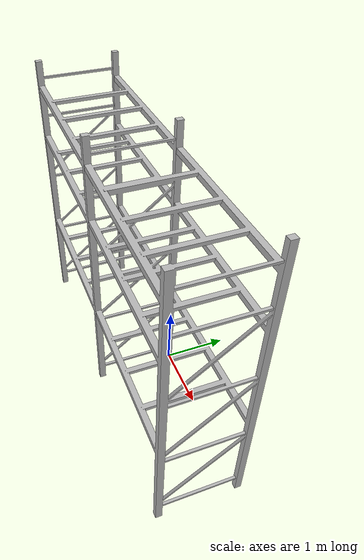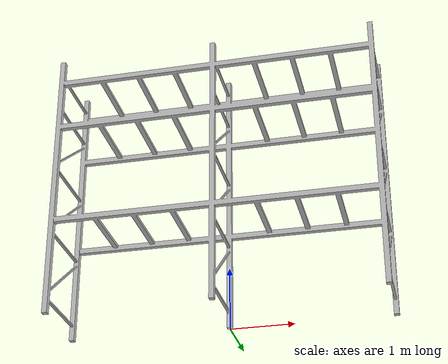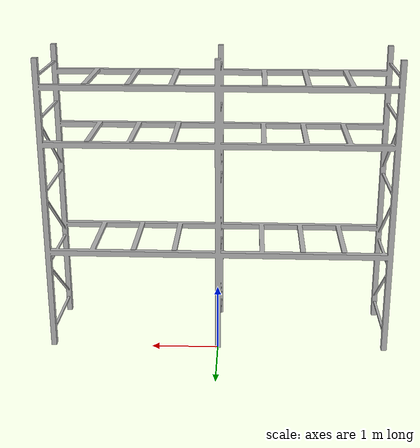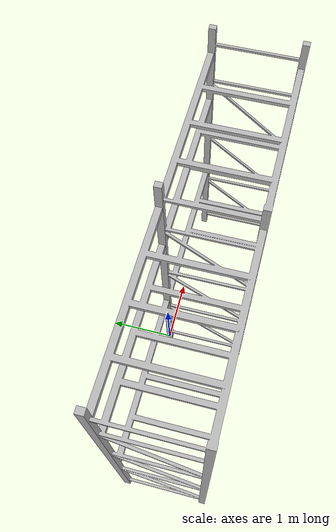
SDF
<?xml version="1.0" ?>
<sdf version="1.5">
  <model name="Shelves high">
    <static>true</static>
    <link name="link">
      <collision name="collision">
        <geometry>
          <mesh>
            <uri>model://shelves_high/meshes/shelves_high_collision.dae</uri>
            <scale>1 1.2 1.2</scale>
          </mesh>
        </geometry>
      </collision>
      <visual name="visual">
        <geometry>
          <mesh>
            <uri>model://shelves_high/meshes/shelves_high.dae</uri>
            <scale>1 1.2 1.2</scale>
          </mesh>
        </geometry>
      </visual>
    </link>
  </model>
</sdf>
